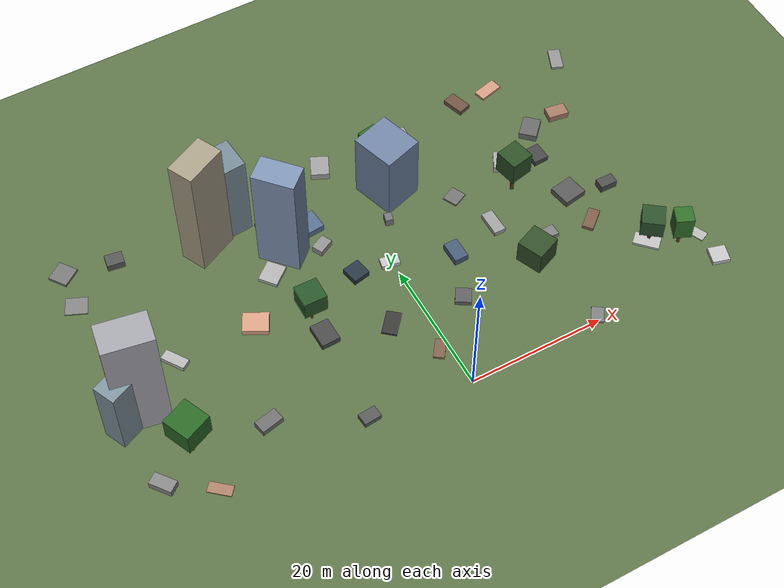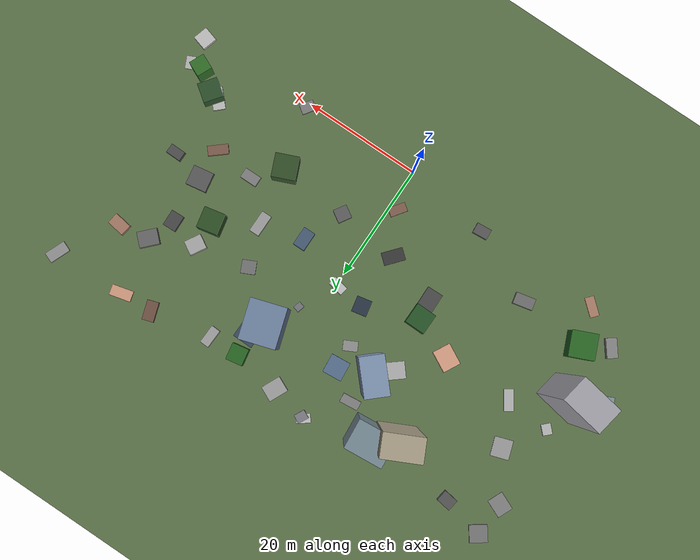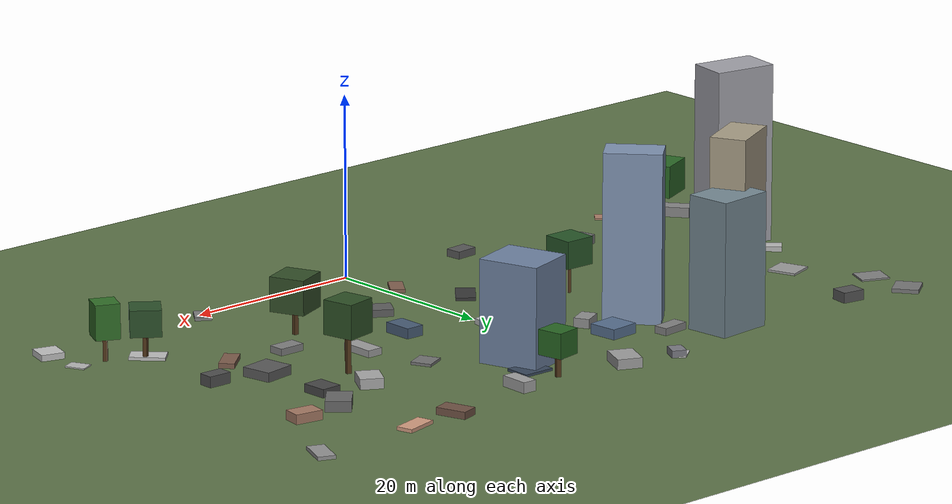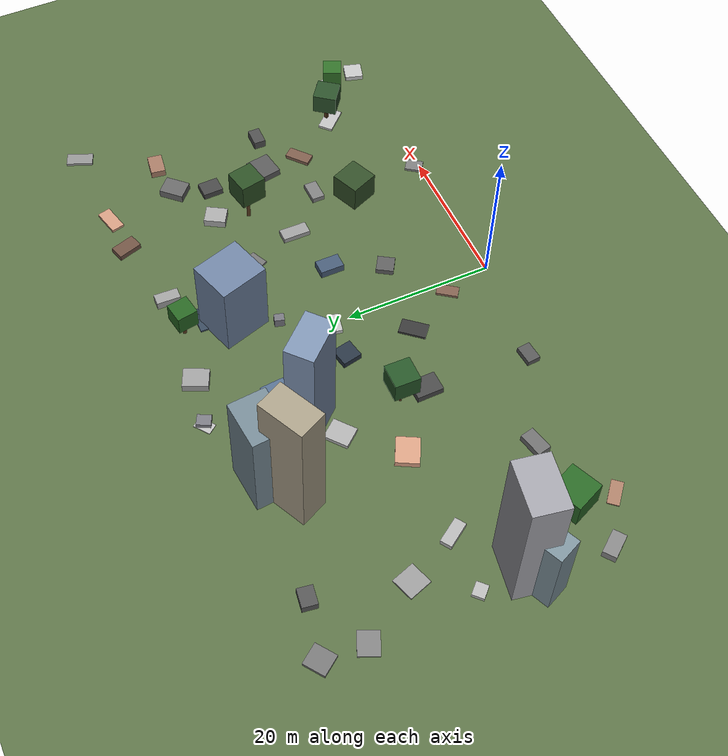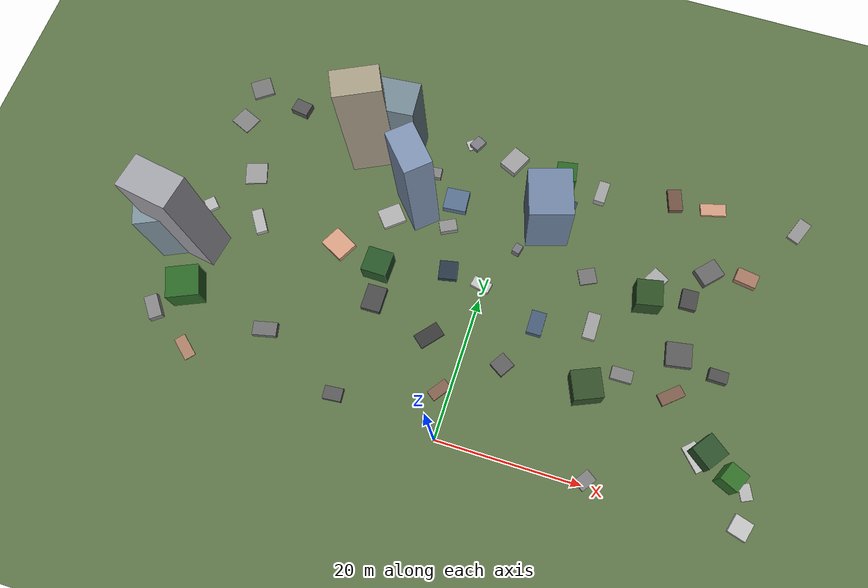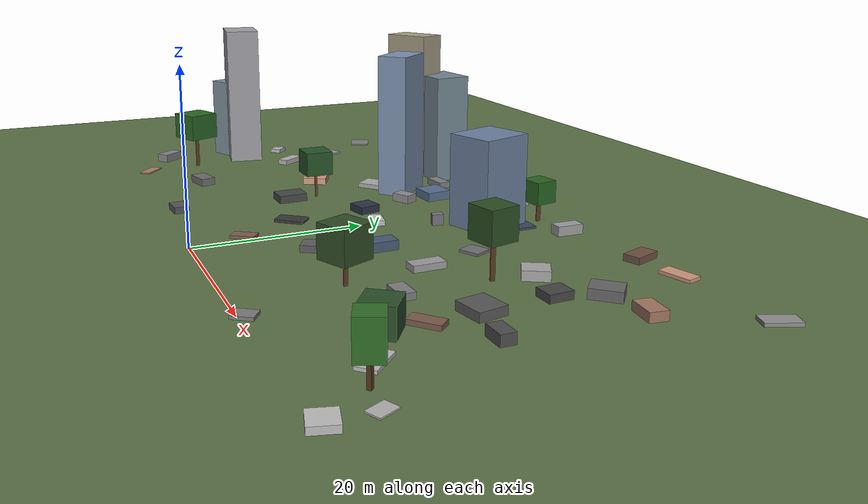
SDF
<sdf version="1.9">
 <world name="world_wind_v3_s1p5">
  <model name="ground_plane">
   <static>true</static>
   <link name="link">
    <collision name="collision">
     <geometry><plane><normal>0 0 1</normal><size>1 1</size></plane></geometry>
    </collision>
    <visual name="visual">
     <geometry><plane><normal>0 0 1</normal><size>500 500</size></plane></geometry>
     <material>
      <ambient>0.34 0.42 0.27 1</ambient>
      <diffuse>0.36 0.45 0.28 1</diffuse>
      <specular>0.05 0.06 0.04 1</specular>
     </material>
    </visual>
    <inertial>
     <mass>1</mass>
     <inertia><ixx>1</ixx><ixy>0</ixy><ixz>0</ixz><iyy>1</iyy><iyz>0</iyz><izz>1</izz></inertia>
    </inertial>
   </link>
  </model>
  <model name="tex_3">
   <static>true</static>
   <pose>-42.364 5.896 0.552 0 0 0.651</pose>
   <link name="l">
    <visual name="v">
     <cast_shadows>false</cast_shadows>
     <geometry><box><size>1.788 3.298 1.104</size></box></geometry>
     <material>
      <ambient>0.524 0.524 0.524 1</ambient>
      <diffuse>0.524 0.524 0.524 1</diffuse>
      <specular>0.1 0.1 0.1 1</specular>
     </material>
    </visual>
   </link>
  </model>
  <model name="tex_4">
   <static>true</static>
   <pose>-40.961 22.566 0.267 0 0 2.347</pose>
   <link name="l">
    <visual name="v">
     <cast_shadows>false</cast_shadows>
     <geometry><box><size>1.824 1.576 0.533</size></box></geometry>
     <material>
      <ambient>0.718 0.718 0.718 1</ambient>
      <diffuse>0.718 0.718 0.718 1</diffuse>
      <specular>0.1 0.1 0.1 1</specular>
     </material>
    </visual>
   </link>
  </model>
  <model name="tex_5">
   <static>true</static>
   <pose>-41.461 36.745 0.092 0 0 1.161</pose>
   <link name="l">
    <visual name="v">
     <cast_shadows>false</cast_shadows>
     <geometry><box><size>2.701 3.118 0.185</size></box></geometry>
     <material>
      <ambient>0.507 0.507 0.507 1</ambient>
      <diffuse>0.507 0.507 0.507 1</diffuse>
      <specular>0.1 0.1 0.1 1</specular>
     </material>
    </visual>
   </link>
  </model>
  <model name="tex_6">
   <static>true</static>
   <pose>-41.051 42.476 0.215 0 0 0.624</pose>
   <link name="l">
    <visual name="v">
     <cast_shadows>false</cast_shadows>
     <geometry><box><size>2.969 2.847 0.430</size></box></geometry>
     <material>
      <ambient>0.465 0.465 0.465 1</ambient>
      <diffuse>0.465 0.465 0.465 1</diffuse>
      <specular>0.1 0.1 0.1 1</specular>
     </material>
    </visual>
   </link>
  </model>
  <model name="tex_11">
   <static>true</static>
   <pose>-36.247 1.969 0.081 0 0 2.430</pose>
   <link name="l">
    <visual name="v">
     <cast_shadows>false</cast_shadows>
     <geometry><box><size>3.335 1.543 0.161</size></box></geometry>
     <material>
      <ambient>0.673 0.498 0.410 1</ambient>
      <diffuse>0.673 0.498 0.410 1</diffuse>
      <specular>0.1 0.1 0.1 1</specular>
     </material>
    </visual>
   </link>
  </model>
  <model name="tex_12">
   <static>true</static>
   <pose>-33.303 22.082 0.358 0 0 0.588</pose>
   <link name="l">
    <visual name="v">
     <cast_shadows>false</cast_shadows>
     <geometry><box><size>1.540 3.562 0.716</size></box></geometry>
     <material>
      <ambient>0.703 0.703 0.703 1</ambient>
      <diffuse>0.703 0.703 0.703 1</diffuse>
      <specular>0.1 0.1 0.1 1</specular>
     </material>
    </visual>
   </link>
  </model>
  <model name="tex_13">
   <static>true</static>
   <pose>-36.687 29.087 0.121 0 0 1.892</pose>
   <link name="l">
    <visual name="v">
     <cast_shadows>false</cast_shadows>
     <geometry><box><size>3.201 3.079 0.242</size></box></geometry>
     <material>
      <ambient>0.605 0.605 0.605 1</ambient>
      <diffuse>0.605 0.605 0.605 1</diffuse>
      <specular>0.1 0.1 0.1 1</specular>
     </material>
    </visual>
   </link>
  </model>
  <model name="tex_14">
   <static>true</static>
   <pose>-33.922 40.861 0.561 0 0 2.995</pose>
   <link name="l">
    <visual name="v">
     <cast_shadows>false</cast_shadows>
     <geometry><box><size>2.501 1.990 1.123</size></box></geometry>
     <material>
      <ambient>0.331 0.331 0.331 1</ambient>
      <diffuse>0.331 0.331 0.331 1</diffuse>
      <specular>0.1 0.1 0.1 1</specular>
     </material>
    </visual>
   </link>
  </model>
  <model name="tex_20">
   <static>true</static>
   <pose>-26.583 7.452 0.493 0 0 1.788</pose>
   <link name="l">
    <visual name="v">
     <cast_shadows>false</cast_shadows>
     <geometry><box><size>1.907 3.305 0.985</size></box></geometry>
     <material>
      <ambient>0.435 0.435 0.435 1</ambient>
      <diffuse>0.435 0.435 0.435 1</diffuse>
      <specular>0.1 0.1 0.1 1</specular>
     </material>
    </visual>
   </link>
  </model>
  <model name="tex_23">
   <static>true</static>
   <pose>-21.289 22.067 0.421 0 0 1.085</pose>
   <link name="l">
    <visual name="v">
     <cast_shadows>false</cast_shadows>
     <geometry><box><size>3.061 3.689 0.843</size></box></geometry>
     <material>
      <ambient>0.844 0.624 0.514 1</ambient>
      <diffuse>0.844 0.624 0.514 1</diffuse>
      <specular>0.1 0.1 0.1 1</specular>
     </material>
    </visual>
   </link>
  </model>
  <model name="tex_25">
   <static>true</static>
   <pose>-14.687 1.809 0.409 0 0 0.085</pose>
   <link name="l">
    <visual name="v">
     <cast_shadows>false</cast_shadows>
     <geometry><box><size>2.544 1.776 0.818</size></box></geometry>
     <material>
      <ambient>0.344 0.344 0.344 1</ambient>
      <diffuse>0.344 0.344 0.344 1</diffuse>
      <specular>0.1 0.1 0.1 1</specular>
     </material>
    </visual>
   </link>
  </model>
  <model name="tex_26">
   <static>true</static>
   <pose>-13.866 15.922 0.478 0 0 0.018</pose>
   <link name="l">
    <visual name="v">
     <cast_shadows>false</cast_shadows>
     <geometry><box><size>2.734 3.575 0.956</size></box></geometry>
     <material>
      <ambient>0.285 0.285 0.285 1</ambient>
      <diffuse>0.285 0.285 0.285 1</diffuse>
      <specular>0.1 0.1 0.1 1</specular>
     </material>
    </visual>
   </link>
  </model>
  <model name="tex_27">
   <static>true</static>
   <pose>-15.593 28.385 0.292 0 0 0.689</pose>
   <link name="l">
    <visual name="v">
     <cast_shadows>false</cast_shadows>
     <geometry><box><size>3.279 2.839 0.583</size></box></geometry>
     <material>
      <ambient>0.681 0.681 0.681 1</ambient>
      <diffuse>0.681 0.681 0.681 1</diffuse>
      <specular>0.1 0.1 0.1 1</specular>
     </material>
    </visual>
   </link>
  </model>
  <model name="tex_28">
   <static>true</static>
   <pose>-12.397 36.555 0.390 0 0 1.678</pose>
   <link name="l">
    <visual name="v">
     <cast_shadows>false</cast_shadows>
     <geometry><box><size>1.529 3.150 0.780</size></box></geometry>
     <material>
      <ambient>0.502 0.502 0.502 1</ambient>
      <diffuse>0.502 0.502 0.502 1</diffuse>
      <specular>0.1 0.1 0.1 1</specular>
     </material>
    </visual>
   </link>
  </model>
  <model name="tex_33">
   <static>true</static>
   <pose>-5.055 13.235 0.173 0 0 2.437</pose>
   <link name="l">
    <visual name="v">
     <cast_shadows>false</cast_shadows>
     <geometry><box><size>2.130 3.598 0.346</size></box></geometry>
     <material>
      <ambient>0.218 0.218 0.218 1</ambient>
      <diffuse>0.218 0.218 0.218 1</diffuse>
      <specular>0.1 0.1 0.1 1</specular>
     </material>
    </visual>
   </link>
  </model>
  <model name="tex_34">
   <static>true</static>
   <pose>-5.336 22.822 0.455 0 0 1.771</pose>
   <link name="l">
    <visual name="v">
     <cast_shadows>false</cast_shadows>
     <geometry><box><size>2.647 2.567 0.911</size></box></geometry>
     <material>
      <ambient>0.162 0.208 0.266 1</ambient>
      <diffuse>0.162 0.208 0.266 1</diffuse>
      <specular>0.1 0.1 0.1 1</specular>
     </material>
    </visual>
   </link>
  </model>
  <model name="tex_35">
   <static>true</static>
   <pose>-7.390 29.149 0.509 0 0 2.042</pose>
   <link name="l">
    <visual name="v">
     <cast_shadows>false</cast_shadows>
     <geometry><box><size>1.694 2.439 1.017</size></box></geometry>
     <material>
      <ambient>0.559 0.559 0.559 1</ambient>
      <diffuse>0.559 0.559 0.559 1</diffuse>
      <specular>0.1 0.1 0.1 1</specular>
     </material>
    </visual>
   </link>
  </model>
  <model name="tex_36">
   <static>true</static>
   <pose>-7.456 33.255 0.553 0 0 0.085</pose>
   <link name="l">
    <visual name="v">
     <cast_shadows>false</cast_shadows>
     <geometry><box><size>3.316 3.214 1.106</size></box></geometry>
     <material>
      <ambient>0.339 0.436 0.557 1</ambient>
      <diffuse>0.339 0.436 0.557 1</diffuse>
      <specular>0.1 0.1 0.1 1</specular>
     </material>
    </visual>
   </link>
  </model>
  <model name="tex_37">
   <static>true</static>
   <pose>-7.641 43.052 0.068 0 0 0.654</pose>
   <link name="l">
    <visual name="v">
     <cast_shadows>false</cast_shadows>
     <geometry><box><size>2.350 1.506 0.135</size></box></geometry>
     <material>
      <ambient>0.744 0.744 0.744 1</ambient>
      <diffuse>0.744 0.744 0.744 1</diffuse>
      <specular>0.1 0.1 0.1 1</specular>
     </material>
    </visual>
   </link>
  </model>
  <model name="tex_40">
   <static>true</static>
   <pose>-1.386 6.486 0.192 0 0 2.519</pose>
   <link name="l">
    <visual name="v">
     <cast_shadows>false</cast_shadows>
     <geometry><box><size>1.553 2.902 0.383</size></box></geometry>
     <material>
      <ambient>0.506 0.374 0.308 1</ambient>
      <diffuse>0.506 0.374 0.308 1</diffuse>
      <specular>0.1 0.1 0.1 1</specular>
     </material>
    </visual>
   </link>
  </model>
  <model name="tex_41">
   <static>true</static>
   <pose>-0.334 22.233 0.320 0 0 2.941</pose>
   <link name="l">
    <visual name="v">
     <cast_shadows>false</cast_shadows>
     <geometry><box><size>2.676 1.504 0.640</size></box></geometry>
     <material>
      <ambient>0.755 0.755 0.755 1</ambient>
      <diffuse>0.755 0.755 0.755 1</diffuse>
      <specular>0.1 0.1 0.1 1</specular>
     </material>
    </visual>
   </link>
  </model>
  <model name="tex_42">
   <static>true</static>
   <pose>-1.191 41.675 0.541 0 0 2.709</pose>
   <link name="l">
    <visual name="v">
     <cast_shadows>false</cast_shadows>
     <geometry><box><size>2.661 3.355 1.083</size></box></geometry>
     <material>
      <ambient>0.618 0.618 0.618 1</ambient>
      <diffuse>0.618 0.618 0.618 1</diffuse>
      <specular>0.1 0.1 0.1 1</specular>
     </material>
    </visual>
   </link>
  </model>
  <model name="tex_47">
   <static>true</static>
   <pose>5.648 12.154 0.392 0 0 2.582</pose>
   <link name="l">
    <visual name="v">
     <cast_shadows>false</cast_shadows>
     <geometry><box><size>2.287 2.346 0.784</size></box></geometry>
     <material>
      <ambient>0.366 0.366 0.366 1</ambient>
      <diffuse>0.366 0.366 0.366 1</diffuse>
      <specular>0.1 0.1 0.1 1</specular>
     </material>
    </visual>
   </link>
  </model>
  <model name="tex_48">
   <static>true</static>
   <pose>8.478 19.022 0.558 0 0 0.003</pose>
   <link name="l">
    <visual name="v">
     <cast_shadows>false</cast_shadows>
     <geometry><box><size>2.073 3.250 1.116</size></box></geometry>
     <material>
      <ambient>0.279 0.359 0.459 1</ambient>
      <diffuse>0.279 0.359 0.459 1</diffuse>
      <specular>0.1 0.1 0.1 1</specular>
     </material>
    </visual>
   </link>
  </model>
  <model name="tex_49">
   <static>true</static>
   <pose>7.433 36.927 0.137 0 0 3.126</pose>
   <link name="l">
    <visual name="v">
     <cast_shadows>false</cast_shadows>
     <geometry><box><size>3.517 2.835 0.274</size></box></geometry>
     <material>
      <ambient>0.220 0.282 0.361 1</ambient>
      <diffuse>0.220 0.282 0.361 1</diffuse>
      <specular>0.1 0.1 0.1 1</specular>
     </material>
    </visual>
   </link>
  </model>
  <model name="tex_54">
   <static>true</static>
   <pose>15.767 20.906 0.376 0 0 0.000</pose>
   <link name="l">
    <visual name="v">
     <cast_shadows>false</cast_shadows>
     <geometry><box><size>1.745 3.745 0.753</size></box></geometry>
     <material>
      <ambient>0.614 0.614 0.614 1</ambient>
      <diffuse>0.614 0.614 0.614 1</diffuse>
      <specular>0.1 0.1 0.1 1</specular>
     </material>
    </visual>
   </link>
  </model>
  <model name="tex_55">
   <static>true</static>
   <pose>13.403 27.801 0.150 0 0 0.441</pose>
   <link name="l">
    <visual name="v">
     <cast_shadows>false</cast_shadows>
     <geometry><box><size>2.420 2.242 0.300</size></box></geometry>
     <material>
      <ambient>0.447 0.447 0.447 1</ambient>
      <diffuse>0.447 0.447 0.447 1</diffuse>
      <specular>0.1 0.1 0.1 1</specular>
     </material>
    </visual>
   </link>
  </model>
  <model name="tex_56">
   <static>true</static>
   <pose>12.143 40.527 0.580 0 0 1.531</pose>
   <link name="l">
    <visual name="v">
     <cast_shadows>false</cast_shadows>
     <geometry><box><size>3.204 1.557 1.160</size></box></geometry>
     <material>
      <ambient>0.623 0.623 0.623 1</ambient>
      <diffuse>0.623 0.623 0.623 1</diffuse>
      <specular>0.1 0.1 0.1 1</specular>
     </material>
    </visual>
   </link>
  </model>
  <model name="tex_60">
   <static>true</static>
   <pose>20.214 0.745 0.181 0 0 2.533</pose>
   <link name="l">
    <visual name="v">
     <cast_shadows>false</cast_shadows>
     <geometry><box><size>1.776 2.357 0.361</size></box></geometry>
     <material>
      <ambient>0.489 0.489 0.489 1</ambient>
      <diffuse>0.489 0.489 0.489 1</diffuse>
      <specular>0.1 0.1 0.1 1</specular>
     </material>
    </visual>
   </link>
  </model>
  <model name="tex_61">
   <static>true</static>
   <pose>21.348 15.541 0.371 0 0 0.008</pose>
   <link name="l">
    <visual name="v">
     <cast_shadows>false</cast_shadows>
     <geometry><box><size>2.934 1.750 0.742</size></box></geometry>
     <material>
      <ambient>0.497 0.497 0.497 1</ambient>
      <diffuse>0.497 0.497 0.497 1</diffuse>
      <specular>0.1 0.1 0.1 1</specular>
     </material>
    </visual>
   </link>
  </model>
  <model name="tex_62">
   <static>true</static>
   <pose>22.502 29.656 0.555 0 0 1.040</pose>
   <link name="l">
    <visual name="v">
     <cast_shadows>false</cast_shadows>
     <geometry><box><size>2.904 2.452 1.110</size></box></geometry>
     <material>
      <ambient>0.657 0.657 0.657 1</ambient>
      <diffuse>0.657 0.657 0.657 1</diffuse>
      <specular>0.1 0.1 0.1 1</specular>
     </material>
    </visual>
   </link>
  </model>
  <model name="tex_63">
   <static>true</static>
   <pose>22.476 42.545 0.385 0 0 1.880</pose>
   <link name="l">
    <visual name="v">
     <cast_shadows>false</cast_shadows>
     <geometry><box><size>3.311 1.956 0.771</size></box></geometry>
     <material>
      <ambient>0.434 0.321 0.264 1</ambient>
      <diffuse>0.434 0.321 0.264 1</diffuse>
      <specular>0.1 0.1 0.1 1</specular>
     </material>
    </visual>
   </link>
  </model>
  <model name="tex_68">
   <static>true</static>
   <pose>28.316 14.783 0.268 0 0 0.704</pose>
   <link name="l">
    <visual name="v">
     <cast_shadows>false</cast_shadows>
     <geometry><box><size>3.447 1.647 0.537</size></box></geometry>
     <material>
      <ambient>0.487 0.360 0.296 1</ambient>
      <diffuse>0.487 0.360 0.296 1</diffuse>
      <specular>0.1 0.1 0.1 1</specular>
     </material>
    </visual>
   </link>
  </model>
  <model name="tex_69">
   <static>true</static>
   <pose>28.019 20.385 0.502 0 0 1.736</pose>
   <link name="l">
    <visual name="v">
     <cast_shadows>false</cast_shadows>
     <geometry><box><size>3.315 3.519 1.004</size></box></geometry>
     <material>
      <ambient>0.348 0.348 0.348 1</ambient>
      <diffuse>0.348 0.348 0.348 1</diffuse>
      <specular>0.1 0.1 0.1 1</specular>
     </material>
    </visual>
   </link>
  </model>
  <model name="tex_70">
   <static>true</static>
   <pose>27.672 28.424 0.450 0 0 0.031</pose>
   <link name="l">
    <visual name="v">
     <cast_shadows>false</cast_shadows>
     <geometry><box><size>2.253 2.770 0.900</size></box></geometry>
     <material>
      <ambient>0.276 0.276 0.276 1</ambient>
      <diffuse>0.276 0.276 0.276 1</diffuse>
      <specular>0.1 0.1 0.1 1</specular>
     </material>
    </visual>
   </link>
  </model>
  <model name="tex_71">
   <static>true</static>
   <pose>29.434 33.031 0.560 0 0 2.381</pose>
   <link name="l">
    <visual name="v">
     <cast_shadows>false</cast_shadows>
     <geometry><box><size>2.633 3.348 1.120</size></box></geometry>
     <material>
      <ambient>0.403 0.403 0.403 1</ambient>
      <diffuse>0.403 0.403 0.403 1</diffuse>
      <specular>0.1 0.1 0.1 1</specular>
     </material>
    </visual>
   </link>
  </model>
  <model name="tex_72">
   <static>true</static>
   <pose>28.078 42.825 0.191 0 0 0.244</pose>
   <link name="l">
    <visual name="v">
     <cast_shadows>false</cast_shadows>
     <geometry><box><size>3.638 1.785 0.382</size></box></geometry>
     <material>
      <ambient>0.818 0.605 0.498 1</ambient>
      <diffuse>0.818 0.605 0.498 1</diffuse>
      <specular>0.1 0.1 0.1 1</specular>
     </material>
    </visual>
   </link>
  </model>
  <model name="tex_76">
   <static>true</static>
   <pose>33.193 7.809 0.176 0 0 2.329</pose>
   <link name="l">
    <visual name="v">
     <cast_shadows>false</cast_shadows>
     <geometry><box><size>3.752 2.029 0.352</size></box></geometry>
     <material>
      <ambient>0.740 0.740 0.740 1</ambient>
      <diffuse>0.740 0.740 0.740 1</diffuse>
      <specular>0.1 0.1 0.1 1</specular>
     </material>
    </visual>
   </link>
  </model>
  <model name="tex_77">
   <static>true</static>
   <pose>33.668 19.025 0.583 0 0 3.123</pose>
   <link name="l">
    <visual name="v">
     <cast_shadows>false</cast_shadows>
     <geometry><box><size>2.562 1.621 1.166</size></box></geometry>
     <material>
      <ambient>0.305 0.305 0.305 1</ambient>
      <diffuse>0.305 0.305 0.305 1</diffuse>
      <specular>0.1 0.1 0.1 1</specular>
     </material>
    </visual>
   </link>
  </model>
  <model name="tex_78">
   <static>true</static>
   <pose>34.603 33.820 0.508 0 0 1.416</pose>
   <link name="l">
    <visual name="v">
     <cast_shadows>false</cast_shadows>
     <geometry><box><size>1.984 3.033 1.016</size></box></geometry>
     <material>
      <ambient>0.641 0.474 0.390 1</ambient>
      <diffuse>0.641 0.474 0.390 1</diffuse>
      <specular>0.1 0.1 0.1 1</specular>
     </material>
    </visual>
   </link>
  </model>
  <model name="tex_81">
   <static>true</static>
   <pose>40.486 0.810 0.338 0 0 1.288</pose>
   <link name="l">
    <visual name="v">
     <cast_shadows>false</cast_shadows>
     <geometry><box><size>2.543 2.543 0.676</size></box></geometry>
     <material>
      <ambient>0.755 0.755 0.755 1</ambient>
      <diffuse>0.755 0.755 0.755 1</diffuse>
      <specular>0.1 0.1 0.1 1</specular>
     </material>
    </visual>
   </link>
  </model>
  <model name="tex_82">
   <static>true</static>
   <pose>40.320 5.360 0.070 0 0 2.001</pose>
   <link name="l">
    <visual name="v">
     <cast_shadows>false</cast_shadows>
     <geometry><box><size>2.173 1.579 0.140</size></box></geometry>
     <material>
      <ambient>0.709 0.709 0.709 1</ambient>
      <diffuse>0.709 0.709 0.709 1</diffuse>
      <specular>0.1 0.1 0.1 1</specular>
     </material>
    </visual>
   </link>
  </model>
  <model name="tex_83">
   <static>true</static>
   <pose>40.451 43.166 0.193 0 0 1.181</pose>
   <link name="l">
    <visual name="v">
     <cast_shadows>false</cast_shadows>
     <geometry><box><size>3.585 1.822 0.385</size></box></geometry>
     <material>
      <ambient>0.570 0.570 0.570 1</ambient>
      <diffuse>0.570 0.570 0.570 1</diffuse>
      <specular>0.1 0.1 0.1 1</specular>
     </material>
    </visual>
   </link>
  </model>
  <model name="tree_1">
   <static>true</static>
   <pose>33.738 8.093 0 0 0 0.426</pose>
   <link name="l">
    <visual name="trunk">
     <cast_shadows>false</cast_shadows>
     <pose>0 0 1.474 0 0 0</pose>
     <geometry><box><size>0.441 0.441 2.948</size></box></geometry>
     <material>
      <ambient>0.30 0.20 0.10 1</ambient>
      <diffuse>0.33 0.22 0.11 1</diffuse>
      <specular>0.02 0.02 0.02 1</specular>
     </material>
    </visual>
    <visual name="canopy">
     <cast_shadows>false</cast_shadows>
     <pose>0 0 4.229 0 0 0.5</pose>
     <geometry><box><size>3.254 3.254 2.846</size></box></geometry>
     <material>
      <ambient>0.170 0.314 0.167 1</ambient>
      <diffuse>0.170 0.314 0.167 1</diffuse>
      <specular>0.03 0.05 0.03 1</specular>
     </material>
    </visual>
   </link>
  </model>
  <model name="tree_2">
   <static>true</static>
   <pose>37.090 5.759 0 0 0 0.645</pose>
   <link name="l">
    <visual name="trunk">
     <cast_shadows>false</cast_shadows>
     <pose>0 0 1.379 0 0 0</pose>
     <geometry><box><size>0.421 0.421 2.759</size></box></geometry>
     <material>
      <ambient>0.30 0.20 0.10 1</ambient>
      <diffuse>0.33 0.22 0.11 1</diffuse>
      <specular>0.02 0.02 0.02 1</specular>
     </material>
    </visual>
    <visual name="canopy">
     <cast_shadows>false</cast_shadows>
     <pose>0 0 4.447 0 0 0.5</pose>
     <geometry><box><size>2.603 2.603 3.752</size></box></geometry>
     <material>
      <ambient>0.194 0.435 0.158 1</ambient>
      <diffuse>0.194 0.435 0.158 1</diffuse>
      <specular>0.03 0.05 0.03 1</specular>
     </material>
    </visual>
   </link>
  </model>
  <model name="tree_3">
   <static>true</static>
   <pose>16.889 11.626 0 0 0 1.468</pose>
   <link name="l">
    <visual name="trunk">
     <cast_shadows>false</cast_shadows>
     <pose>0 0 1.442 0 0 0</pose>
     <geometry><box><size>0.453 0.453 2.884</size></box></geometry>
     <material>
      <ambient>0.30 0.20 0.10 1</ambient>
      <diffuse>0.33 0.22 0.11 1</diffuse>
      <specular>0.02 0.02 0.02 1</specular>
     </material>
    </visual>
    <visual name="canopy">
     <cast_shadows>false</cast_shadows>
     <pose>0 0 4.568 0 0 0.5</pose>
     <geometry><box><size>3.885 3.885 3.743</size></box></geometry>
     <material>
      <ambient>0.196 0.305 0.157 1</ambient>
      <diffuse>0.196 0.305 0.157 1</diffuse>
      <specular>0.03 0.05 0.03 1</specular>
     </material>
    </visual>
   </link>
  </model>
  <model name="tree_4">
   <static>true</static>
   <pose>-36.943 8.972 0 0 0 1.479</pose>
   <link name="l">
    <visual name="trunk">
     <cast_shadows>false</cast_shadows>
     <pose>0 0 2.258 0 0 0</pose>
     <geometry><box><size>0.487 0.487 4.515</size></box></geometry>
     <material>
      <ambient>0.30 0.20 0.10 1</ambient>
      <diffuse>0.33 0.22 0.11 1</diffuse>
      <specular>0.02 0.02 0.02 1</specular>
     </material>
    </visual>
    <visual name="canopy">
     <cast_shadows>false</cast_shadows>
     <pose>0 0 6.105 0 0 0.5</pose>
     <geometry><box><size>4.218 4.218 3.531</size></box></geometry>
     <material>
      <ambient>0.168 0.408 0.150 1</ambient>
      <diffuse>0.168 0.408 0.150 1</diffuse>
      <specular>0.03 0.05 0.03 1</specular>
     </material>
    </visual>
   </link>
  </model>
  <model name="tree_5">
   <static>true</static>
   <pose>6.629 40.186 0 0 0 1.243</pose>
   <link name="l">
    <visual name="trunk">
     <cast_shadows>false</cast_shadows>
     <pose>0 0 1.252 0 0 0</pose>
     <geometry><box><size>0.481 0.481 2.503</size></box></geometry>
     <material>
      <ambient>0.30 0.20 0.10 1</ambient>
      <diffuse>0.33 0.22 0.11 1</diffuse>
      <specular>0.02 0.02 0.02 1</specular>
     </material>
    </visual>
    <visual name="canopy">
     <cast_shadows>false</cast_shadows>
     <pose>0 0 3.712 0 0 0.5</pose>
     <geometry><box><size>2.798 2.798 2.687</size></box></geometry>
     <material>
      <ambient>0.157 0.398 0.137 1</ambient>
      <diffuse>0.157 0.398 0.137 1</diffuse>
      <specular>0.03 0.05 0.03 1</specular>
     </material>
    </visual>
   </link>
  </model>
  <model name="tree_7">
   <static>true</static>
   <pose>21.500 25.256 0 0 0 1.272</pose>
   <link name="l">
    <visual name="trunk">
     <cast_shadows>false</cast_shadows>
     <pose>0 0 2.182 0 0 0</pose>
     <geometry><box><size>0.482 0.482 4.365</size></box></geometry>
     <material>
      <ambient>0.30 0.20 0.10 1</ambient>
      <diffuse>0.33 0.22 0.11 1</diffuse>
      <specular>0.02 0.02 0.02 1</specular>
     </material>
    </visual>
    <visual name="canopy">
     <cast_shadows>false</cast_shadows>
     <pose>0 0 6.009 0 0 0.5</pose>
     <geometry><box><size>3.479 3.479 3.653</size></box></geometry>
     <material>
      <ambient>0.175 0.312 0.145 1</ambient>
      <diffuse>0.175 0.312 0.145 1</diffuse>
      <specular>0.03 0.05 0.03 1</specular>
     </material>
    </visual>
   </link>
  </model>
  <model name="tree_8">
   <static>true</static>
   <pose>-14.018 19.510 0 0 0 1.056</pose>
   <link name="l">
    <visual name="trunk">
     <cast_shadows>false</cast_shadows>
     <pose>0 0 1.657 0 0 0</pose>
     <geometry><box><size>0.306 0.306 3.313</size></box></geometry>
     <material>
      <ambient>0.30 0.20 0.10 1</ambient>
      <diffuse>0.33 0.22 0.11 1</diffuse>
      <specular>0.02 0.02 0.02 1</specular>
     </material>
    </visual>
    <visual name="canopy">
     <cast_shadows>false</cast_shadows>
     <pose>0 0 4.667 0 0 0.5</pose>
     <geometry><box><size>3.423 3.423 3.009</size></box></geometry>
     <material>
      <ambient>0.154 0.336 0.159 1</ambient>
      <diffuse>0.154 0.336 0.159 1</diffuse>
      <specular>0.03 0.05 0.03 1</specular>
     </material>
    </visual>
   </link>
  </model>
  <model name="bldg_3">
   <static>true</static>
   <pose>-40.256 16.961 9.765 0 0 1.399</pose>
   <link name="l">
    <visual name="v">
     <cast_shadows>false</cast_shadows>
     <geometry><box><size>4.570 6.977 19.531</size></box></geometry>
     <material>
      <ambient>0.637 0.637 0.667 1</ambient>
      <diffuse>0.637 0.637 0.667 1</diffuse>
      <specular>0.14 0.14 0.16 1</specular>
     </material>
    </visual>
   </link>
  </model>
  <model name="bldg_4">
   <static>true</static>
   <pose>-17.653 39.445 7.171 0 0 0.084</pose>
   <link name="l">
    <visual name="v">
     <cast_shadows>false</cast_shadows>
     <geometry><box><size>6.294 4.899 14.343</size></box></geometry>
     <material>
      <ambient>0.461 0.541 0.581 1</ambient>
      <diffuse>0.461 0.541 0.581 1</diffuse>
      <specular>0.14 0.14 0.16 1</specular>
     </material>
    </visual>
   </link>
  </model>
  <model name="bldg_5">
   <static>true</static>
   <pose>5.628 33.821 5.485 0 0 0.303</pose>
   <link name="l">
    <visual name="v">
     <cast_shadows>false</cast_shadows>
     <geometry><box><size>5.927 6.622 10.970</size></box></geometry>
     <material>
      <ambient>0.435 0.515 0.635 1</ambient>
      <diffuse>0.435 0.515 0.635 1</diffuse>
      <specular>0.14 0.14 0.16 1</specular>
     </material>
    </visual>
   </link>
  </model>
  <model name="bldg_6">
   <static>true</static>
   <pose>-12.439 30.954 9.105 0 0 0.733</pose>
   <link name="l">
    <visual name="v">
     <cast_shadows>false</cast_shadows>
     <geometry><box><size>3.839 6.156 18.210</size></box></geometry>
     <material>
      <ambient>0.497 0.577 0.697 1</ambient>
      <diffuse>0.497 0.577 0.697 1</diffuse>
      <specular>0.14 0.14 0.16 1</specular>
     </material>
    </visual>
   </link>
  </model>
  <model name="bldg_8">
   <static>true</static>
   <pose>-21.358 37.048 9.856 0 0 0.452</pose>
   <link name="l">
    <visual name="v">
     <cast_shadows>false</cast_shadows>
     <geometry><box><size>6.360 3.882 19.712</size></box></geometry>
     <material>
      <ambient>0.660 0.620 0.530 1</ambient>
      <diffuse>0.660 0.620 0.530 1</diffuse>
      <specular>0.14 0.14 0.16 1</specular>
     </material>
    </visual>
   </link>
  </model>
  <model name="bldg_9">
   <static>true</static>
   <pose>-43.119 15.831 5.694 0 0 0.421</pose>
   <link name="l">
    <visual name="v">
     <cast_shadows>false</cast_shadows>
     <geometry><box><size>4.366 3.356 11.388</size></box></geometry>
     <material>
      <ambient>0.496 0.576 0.616 1</ambient>
      <diffuse>0.496 0.576 0.616 1</diffuse>
      <specular>0.14 0.14 0.16 1</specular>
     </material>
    </visual>
   </link>
  </model>
  <model name="rock_0">
   <static>true</static>
   <pose>2.993 28.594 0.639 0 0 1.309</pose>
   <link name="l">
    <visual name="v">
     <cast_shadows>false</cast_shadows>
     <geometry><box><size>1.326 1.091 1.279</size></box></geometry>
     <material>
      <ambient>0.455 0.455 0.485 1</ambient>
      <diffuse>0.455 0.455 0.485 1</diffuse>
      <specular>0.08 0.08 0.08 1</specular>
     </material>
    </visual>
   </link>
  </model>
  <model name="rock_1">
   <static>true</static>
   <pose>-7.209 42.953 0.378 0 0 1.104</pose>
   <link name="l">
    <visual name="v">
     <cast_shadows>false</cast_shadows>
     <geometry><box><size>1.865 1.508 0.757</size></box></geometry>
     <material>
      <ambient>0.480 0.480 0.510 1</ambient>
      <diffuse>0.480 0.480 0.510 1</diffuse>
      <specular>0.08 0.08 0.08 1</specular>
     </material>
    </visual>
   </link>
  </model>
 </world>
</sdf>
